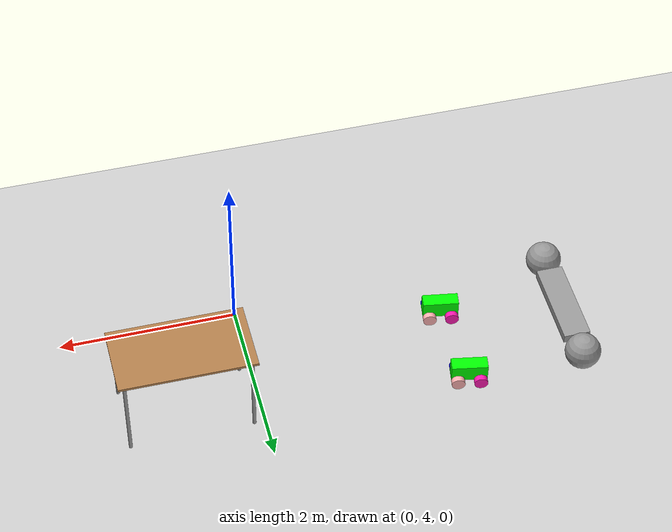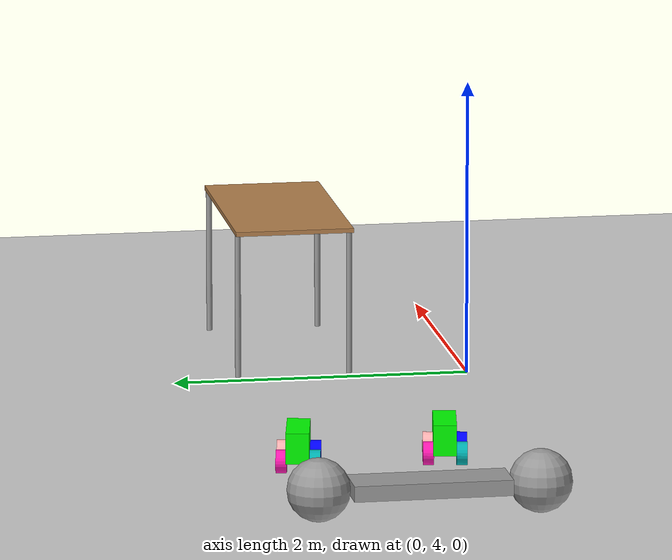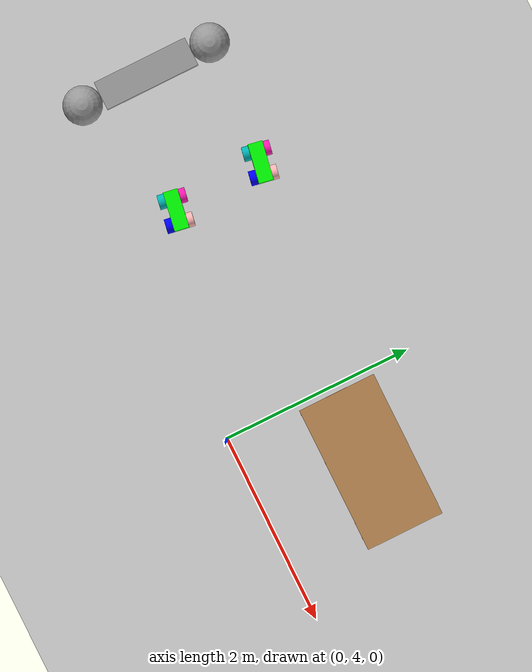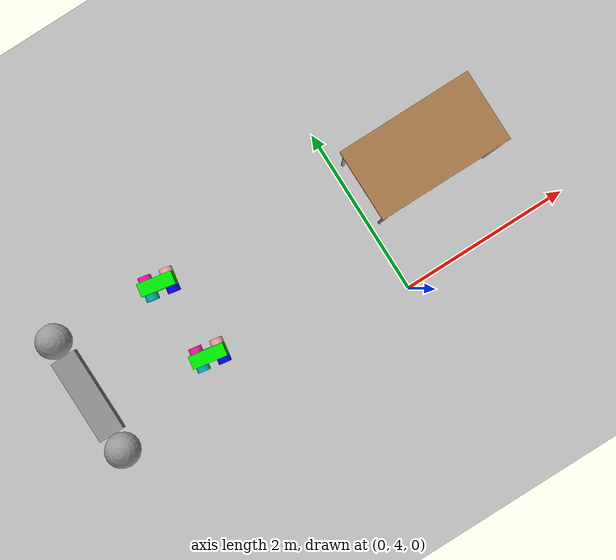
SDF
<sdf version="1.6">
 <world name="default">
  <model name="ground_plane">
   <static>1</static>
   <link name="link">
    <collision name="collision">
     <geometry><plane><normal>0 0 1</normal><size>100 100</size></plane></geometry>
     <surface>
      <contact><collide_bitmask>65535</collide_bitmask></contact>
      <friction><ode><mu>100</mu><mu2>50</mu2></ode></friction>
     </surface>
    </collision>
    <visual name="visual">
     <cast_shadows>0</cast_shadows>
     <geometry><plane><normal>0 0 1</normal><size>100 100</size></plane></geometry>
     <material>
      <script><uri>file://media/materials/scripts/gazebo.material</uri><name>Gazebo/Grey</name></script>
     </material>
    </visual>
   </link>
  </model>
  <model name="wheelrobot2">
   <link name="link_1">
    <pose>0.205245 -0.122906 0.4 0 -0 0</pose>
    <inertial>
     <mass>1</mass>
     <inertia>
      <ixx>0.166667</ixx>
      <ixy>0</ixy>
      <ixz>0</ixz>
      <iyy>0.166667</iyy>
      <iyz>0</iyz>
      <izz>0.166667</izz>
     </inertia>
    </inertial>
    <visual name="visual">
     <geometry><box><size>0.4 0.15 0.2</size></box></geometry>
     <material>
      <lighting>1</lighting>
      <script><uri>file://media/materials/scripts/gazebo.material</uri><name>Gazebo/Grey</name></script>
      <shader type="pixel"><normal_map>__default__</normal_map></shader>
      <ambient>0 1 0 1</ambient>
      <diffuse>0 1 0 1</diffuse>
      <specular>0 1 0.01 1</specular>
      <emissive>0 1 0 1</emissive>
     </material>
    </visual>
    <collision name="collision">
     <geometry><box><size>0.4 0.15 0.2</size></box></geometry>
     <surface>
      <friction>
       <ode><mu>1</mu><mu2>1</mu2><fdir1>0 0 0</fdir1><slip1>0</slip1><slip2>0</slip2></ode>
       <torsional>
        <coefficient>1</coefficient>
        <patch_radius>0</patch_radius>
        <surface_radius>0</surface_radius>
        <use_patch_radius>1</use_patch_radius>
        <ode><slip>0</slip></ode>
       </torsional>
      </friction>
      <bounce><restitution_coefficient>0</restitution_coefficient><threshold>1e+06</threshold></bounce>
      <contact>
       <collide_without_contact>0</collide_without_contact>
       <collide_without_contact_bitmask>1</collide_without_contact_bitmask>
       <collide_bitmask>1</collide_bitmask>
       <ode>
        <soft_cfm>0</soft_cfm>
        <soft_erp>0.2</soft_erp>
        <kp>1e+13</kp>
        <kd>1</kd>
        <max_vel>0.01</max_vel>
        <min_depth>0</min_depth>
       </ode>
       <bullet>
        <split_impulse>1</split_impulse>
        <split_impulse_penetration_threshold>-0.01</split_impulse_penetration_threshold>
        <soft_cfm>0</soft_cfm>
        <soft_erp>0.2</soft_erp>
        <kp>1e+13</kp>
        <kd>1</kd>
       </bullet>
      </contact>
     </surface>
    </collision>
   </link>
   <link name="link_2_clone">
    <pose>0.080245 -0.018274 0.3 1.5757 -0 0</pose>
    <inertial>
     <mass>1</mass>
     <inertia><ixx>0.145833</ixx><ixy>0</ixy><ixz>0</ixz><iyy>0.145833</iyy><iyz>0</iyz><izz>0.125</izz></inertia>
    </inertial>
    <visual name="visual">
     <geometry><cylinder><radius>0.075</radius><length>0.07</length></cylinder></geometry>
     <material>
      <lighting>1</lighting>
      <script><uri>file://media/materials/scripts/gazebo.material</uri><name>Gazebo/Grey</name></script>
      <shader type="pixel"><normal_map>__default__</normal_map></shader>
      <ambient>1 0.1 0.3 1</ambient>
      <diffuse>1 0.1 0.7 1</diffuse>
      <specular>0.1 1 0.01 1</specular>
      <emissive>0.1 1 0 1</emissive>
     </material>
    </visual>
    <collision name="collision">
     <geometry><cylinder><radius>0.075</radius><length>0.07</length></cylinder></geometry>
     <surface>
      <friction>
       <ode><mu>1</mu><mu2>1</mu2><fdir1>0 0 0</fdir1><slip1>0</slip1><slip2>0</slip2></ode>
       <torsional>
        <coefficient>1</coefficient>
        <patch_radius>0</patch_radius>
        <surface_radius>0</surface_radius>
        <use_patch_radius>1</use_patch_radius>
        <ode><slip>0</slip></ode>
       </torsional>
      </friction>
      <bounce><restitution_coefficient>0</restitution_coefficient><threshold>1e+06</threshold></bounce>
      <contact>
       <collide_without_contact>0</collide_without_contact>
       <collide_without_contact_bitmask>1</collide_without_contact_bitmask>
       <collide_bitmask>1</collide_bitmask>
       <ode>
        <soft_cfm>0</soft_cfm>
        <soft_erp>0.2</soft_erp>
        <kp>1e+13</kp>
        <kd>1</kd>
        <max_vel>0.01</max_vel>
        <min_depth>0</min_depth>
       </ode>
       <bullet>
        <split_impulse>1</split_impulse>
        <split_impulse_penetration_threshold>-0.01</split_impulse_penetration_threshold>
        <soft_cfm>0</soft_cfm>
        <soft_erp>0.2</soft_erp>
        <kp>1e+13</kp>
        <kd>1</kd>
       </bullet>
      </contact>
     </surface>
    </collision>
   </link>
   <link name="link_2_clone_0">
    <pose>0.330245 -0.018274 0.3 1.5757 -0 0</pose>
    <inertial>
     <mass>1</mass>
     <inertia><ixx>0.145833</ixx><ixy>0</ixy><ixz>0</ixz><iyy>0.145833</iyy><iyz>0</iyz><izz>0.125</izz></inertia>
    </inertial>
    <visual name="visual">
     <geometry><cylinder><radius>0.075</radius><length>0.07</length></cylinder></geometry>
     <material>
      <lighting>1</lighting>
      <script><uri>file://media/materials/scripts/gazebo.material</uri><name>Gazebo/Grey</name></script>
      <shader type="pixel"><normal_map>__default__</normal_map></shader>
      <ambient>1 0.3 1 1</ambient>
      <diffuse>1 0.7 0.7 1</diffuse>
      <specular>0.01 0.01 1 1</specular>
      <emissive>0.1 0 0.2 1</emissive>
     </material>
    </visual>
    <collision name="collision">
     <geometry><cylinder><radius>0.075</radius><length>0.07</length></cylinder></geometry>
     <surface>
      <friction>
       <ode><mu>1</mu><mu2>1</mu2><fdir1>0 0 0</fdir1><slip1>0</slip1><slip2>0</slip2></ode>
       <torsional>
        <coefficient>1</coefficient>
        <patch_radius>0</patch_radius>
        <surface_radius>0</surface_radius>
        <use_patch_radius>1</use_patch_radius>
        <ode><slip>0</slip></ode>
       </torsional>
      </friction>
      <bounce><restitution_coefficient>0</restitution_coefficient><threshold>1e+06</threshold></bounce>
      <contact>
       <collide_without_contact>0</collide_without_contact>
       <collide_without_contact_bitmask>1</collide_without_contact_bitmask>
       <collide_bitmask>1</collide_bitmask>
       <ode>
        <soft_cfm>0</soft_cfm>
        <soft_erp>0.2</soft_erp>
        <kp>1e+13</kp>
        <kd>1</kd>
        <max_vel>0.01</max_vel>
        <min_depth>0</min_depth>
       </ode>
       <bullet>
        <split_impulse>1</split_impulse>
        <split_impulse_penetration_threshold>-0.01</split_impulse_penetration_threshold>
        <soft_cfm>0</soft_cfm>
        <soft_erp>0.2</soft_erp>
        <kp>1e+13</kp>
        <kd>1</kd>
       </bullet>
      </contact>
     </surface>
    </collision>
   </link>
   <link name="link_2_clone_1">
    <pose>0.080245 -0.233274 0.3 1.5757 -0 0</pose>
    <inertial>
     <mass>1</mass>
     <inertia><ixx>0.145833</ixx><ixy>0</ixy><ixz>0</ixz><iyy>0.145833</iyy><iyz>0</iyz><izz>0.125</izz></inertia>
    </inertial>
    <visual name="visual">
     <geometry><cylinder><radius>0.075</radius><length>0.07</length></cylinder></geometry>
     <material>
      <lighting>1</lighting>
      <script><uri>file://media/materials/scripts/gazebo.material</uri><name>Gazebo/Grey</name></script>
      <shader type="pixel"><normal_map>__default__</normal_map></shader>
      <ambient>0 0.3 0.3 1</ambient>
      <diffuse>0 0.7 0.7 1</diffuse>
      <specular>0 0.01 0.01 1</specular>
      <emissive>0 0 0 1</emissive>
     </material>
    </visual>
    <collision name="collision">
     <geometry><cylinder><radius>0.075</radius><length>0.07</length></cylinder></geometry>
     <surface>
      <friction>
       <ode><mu>1</mu><mu2>1</mu2><fdir1>0 0 0</fdir1><slip1>0</slip1><slip2>0</slip2></ode>
       <torsional>
        <coefficient>1</coefficient>
        <patch_radius>0</patch_radius>
        <surface_radius>0</surface_radius>
        <use_patch_radius>1</use_patch_radius>
        <ode><slip>0</slip></ode>
       </torsional>
      </friction>
      <bounce><restitution_coefficient>0</restitution_coefficient><threshold>1e+06</threshold></bounce>
      <contact>
       <collide_without_contact>0</collide_without_contact>
       <collide_without_contact_bitmask>1</collide_without_contact_bitmask>
       <collide_bitmask>1</collide_bitmask>
       <ode>
        <soft_cfm>0</soft_cfm>
        <soft_erp>0.2</soft_erp>
        <kp>1e+13</kp>
        <kd>1</kd>
        <max_vel>0.01</max_vel>
        <min_depth>0</min_depth>
       </ode>
       <bullet>
        <split_impulse>1</split_impulse>
        <split_impulse_penetration_threshold>-0.01</split_impulse_penetration_threshold>
        <soft_cfm>0</soft_cfm>
        <soft_erp>0.2</soft_erp>
        <kp>1e+13</kp>
        <kd>1</kd>
       </bullet>
      </contact>
     </surface>
    </collision>
   </link>
   <link name="link_2_clone_2">
    <pose>0.330245 -0.233274 0.3 1.5757 -0 0</pose>
    <inertial>
     <mass>1</mass>
     <inertia><ixx>0.145833</ixx><ixy>0</ixy><ixz>0</ixz><iyy>0.145833</iyy><iyz>0</iyz><izz>0.125</izz></inertia>
    </inertial>
    <visual name="visual">
     <geometry><cylinder><radius>0.075</radius><length>0.07</length></cylinder></geometry>
     <material>
      <lighting>1</lighting>
      <script><uri>file://media/materials/scripts/gazebo.material</uri><name>Gazebo/Grey</name></script>
      <shader type="pixel"><normal_map>__default__</normal_map></shader>
      <ambient>0 0 1 1</ambient>
      <diffuse>0 0 1 1</diffuse>
      <specular>0 0 1 1</specular>
      <emissive>0 0 1 1</emissive>
     </material>
    </visual>
    <collision name="collision">
     <geometry><cylinder><radius>0.075</radius><length>0.07</length></cylinder></geometry>
     <surface>
      <friction>
       <ode><mu>1</mu><mu2>1</mu2><fdir1>0 0 0</fdir1><slip1>0</slip1><slip2>0</slip2></ode>
       <torsional>
        <coefficient>1</coefficient>
        <patch_radius>0</patch_radius>
        <surface_radius>0</surface_radius>
        <use_patch_radius>1</use_patch_radius>
        <ode><slip>0</slip></ode>
       </torsional>
      </friction>
      <bounce><restitution_coefficient>0</restitution_coefficient><threshold>1e+06</threshold></bounce>
      <contact>
       <collide_without_contact>0</collide_without_contact>
       <collide_without_contact_bitmask>1</collide_without_contact_bitmask>
       <collide_bitmask>1</collide_bitmask>
       <ode>
        <soft_cfm>0</soft_cfm>
        <soft_erp>0.2</soft_erp>
        <kp>1e+13</kp>
        <kd>1</kd>
        <max_vel>0.01</max_vel>
        <min_depth>0</min_depth>
       </ode>
       <bullet>
        <split_impulse>1</split_impulse>
        <split_impulse_penetration_threshold>-0.01</split_impulse_penetration_threshold>
        <soft_cfm>0</soft_cfm>
        <soft_erp>0.2</soft_erp>
        <kp>1e+13</kp>
        <kd>1</kd>
       </bullet>
      </contact>
     </surface>
    </collision>
   </link>
   <joint name="link_1_JOINT_1" type="revolute">
    <parent>link_1</parent>
    <child>link_2_clone_1</child>
    <axis>
     <xyz>0 0 1</xyz>
     <use_parent_model_frame>0</use_parent_model_frame>
     <limit>
      <lower>-1.79769e+308</lower>
      <upper>1.79769e+308</upper>
      <effort>-1</effort>
      <velocity>-1</velocity>
     </limit>
     <dynamics>
      <spring_reference>0</spring_reference>
      <spring_stiffness>0</spring_stiffness>
      <damping>0</damping>
     </dynamics>
    </axis>
    <physics>
     <ode><limit><cfm>0</cfm><erp>0.2</erp></limit><suspension><cfm>0</cfm><erp>0.2</erp></suspension></ode>
    </physics>
   </joint>
   <joint name="link_1_JOINT_2" type="revolute">
    <parent>link_1</parent>
    <child>link_2_clone_2</child>
    <axis>
     <xyz>1 0 0</xyz>
     <use_parent_model_frame>0</use_parent_model_frame>
     <limit>
      <lower>-1.79769e+308</lower>
      <upper>1.79769e+308</upper>
      <effort>-1</effort>
      <velocity>-1</velocity>
     </limit>
     <dynamics>
      <spring_reference>0</spring_reference>
      <spring_stiffness>0</spring_stiffness>
      <damping>0</damping>
     </dynamics>
    </axis>
    <physics>
     <ode><limit><cfm>0</cfm><erp>0.2</erp></limit><suspension><cfm>0</cfm><erp>0.2</erp></suspension></ode>
    </physics>
   </joint>
   <joint name="link_1_JOINT_3" type="revolute">
    <parent>link_1</parent>
    <child>link_2_clone_0</child>
    <axis>
     <xyz>1 0 0</xyz>
     <use_parent_model_frame>0</use_parent_model_frame>
     <limit>
      <lower>-1.79769e+308</lower>
      <upper>1.79769e+308</upper>
      <effort>-1</effort>
      <velocity>-1</velocity>
     </limit>
     <dynamics>
      <spring_reference>0</spring_reference>
      <spring_stiffness>0</spring_stiffness>
      <damping>0</damping>
     </dynamics>
    </axis>
    <physics>
     <ode><limit><cfm>0</cfm><erp>0.2</erp></limit><suspension><cfm>0</cfm><erp>0.2</erp></suspension></ode>
    </physics>
   </joint>
   <joint name="link_1_JOINT_4" type="revolute">
    <parent>link_1</parent>
    <child>link_2_clone</child>
    <axis>
     <xyz>1 0 0</xyz>
     <use_parent_model_frame>0</use_parent_model_frame>
     <limit>
      <lower>-1.79769e+308</lower>
      <upper>1.79769e+308</upper>
      <effort>-1</effort>
      <velocity>-1</velocity>
     </limit>
     <dynamics>
      <spring_reference>0</spring_reference>
      <spring_stiffness>0</spring_stiffness>
      <damping>0</damping>
     </dynamics>
    </axis>
    <physics>
     <ode><limit><cfm>0</cfm><erp>0.2</erp></limit><suspension><cfm>0</cfm><erp>0.2</erp></suspension></ode>
    </physics>
   </joint>
   <static>0</static>
   <allow_auto_disable>0</allow_auto_disable>
   <pose>-2.48392 5.67542 -0.225004 -0.000661 2.6e-05 -0.178671</pose>
  </model>
  <model name="myrobot2">
   <link name="link_1">
    <pose>0.225614 -0.46612 0.5 0 -0 0</pose>
    <inertial>
     <mass>1</mass>
     <inertia>
      <ixx>0.166667</ixx>
      <ixy>0</ixy>
      <ixz>0</ixz>
      <iyy>0.166667</iyy>
      <iyz>0</iyz>
      <izz>0.166667</izz>
     </inertia>
     <pose>0 0 0.2 0 -0 0</pose>
    </inertial>
    <visual name="visual">
     <geometry><box><size>0.3 1 0.1</size></box></geometry>
     <material>
      <lighting>1</lighting>
      <script><uri>file://media/materials/scripts/gazebo.material</uri><name>Gazebo/Grey</name></script>
      <shader type="pixel"><normal_map>__default__</normal_map></shader>
      <ambient>0.3 0.3 0.3 1</ambient>
      <diffuse>0.7 0.7 0.7 1</diffuse>
      <specular>0.01 0.01 0.01 1</specular>
      <emissive>0 0 0 1</emissive>
     </material>
    </visual>
    <collision name="collision">
     <geometry><box><size>0.3 1 0.1</size></box></geometry>
     <surface>
      <friction>
       <ode><mu>1</mu><mu2>1</mu2><fdir1>0 0 0</fdir1><slip1>0</slip1><slip2>0</slip2></ode>
       <torsional>
        <coefficient>1</coefficient>
        <patch_radius>0</patch_radius>
        <surface_radius>0</surface_radius>
        <use_patch_radius>1</use_patch_radius>
        <ode><slip>0</slip></ode>
       </torsional>
      </friction>
      <bounce><restitution_coefficient>0</restitution_coefficient><threshold>1e+06</threshold></bounce>
      <contact>
       <collide_without_contact>0</collide_without_contact>
       <collide_without_contact_bitmask>1</collide_without_contact_bitmask>
       <collide_bitmask>1</collide_bitmask>
       <ode>
        <soft_cfm>0</soft_cfm>
        <soft_erp>0.2</soft_erp>
        <kp>1e+13</kp>
        <kd>1</kd>
        <max_vel>0.01</max_vel>
        <min_depth>0</min_depth>
       </ode>
       <bullet>
        <split_impulse>1</split_impulse>
        <split_impulse_penetration_threshold>-0.01</split_impulse_penetration_threshold>
        <soft_cfm>0</soft_cfm>
        <soft_erp>0.2</soft_erp>
        <kp>1e+13</kp>
        <kd>1</kd>
       </bullet>
      </contact>
     </surface>
    </collision>
   </link>
   <link name="link_2">
    <pose>0.225614 -1.16612 0.5 0 -0 0</pose>
    <inertial>
     <mass>1</mass>
     <inertia><ixx>0.1</ixx><ixy>0</ixy><ixz>0</ixz><iyy>0.1</iyy><iyz>0</iyz><izz>0.1</izz></inertia>
     <pose>0 0 0.1 0 -0 0</pose>
    </inertial>
    <visual name="visual">
     <geometry><sphere><radius>0.2</radius></sphere></geometry>
     <material>
      <lighting>1</lighting>
      <script><uri>file://media/materials/scripts/gazebo.material</uri><name>Gazebo/Grey</name></script>
      <shader type="pixel"><normal_map>__default__</normal_map></shader>
      <ambient>0.3 0.3 0.3 1</ambient>
      <diffuse>0.7 0.7 0.7 1</diffuse>
      <specular>0.01 0.01 0.01 1</specular>
      <emissive>0 0 0 1</emissive>
     </material>
    </visual>
    <collision name="collision">
     <geometry><sphere><radius>0.2</radius></sphere></geometry>
     <surface>
      <friction>
       <ode><mu>1</mu><mu2>1</mu2><fdir1>0 0 0</fdir1><slip1>0</slip1><slip2>0</slip2></ode>
       <torsional>
        <coefficient>1</coefficient>
        <patch_radius>0</patch_radius>
        <surface_radius>0</surface_radius>
        <use_patch_radius>1</use_patch_radius>
        <ode><slip>0</slip></ode>
       </torsional>
      </friction>
      <bounce><restitution_coefficient>0</restitution_coefficient><threshold>1e+06</threshold></bounce>
      <contact>
       <collide_without_contact>0</collide_without_contact>
       <collide_without_contact_bitmask>1</collide_without_contact_bitmask>
       <collide_bitmask>1</collide_bitmask>
       <ode>
        <soft_cfm>0</soft_cfm>
        <soft_erp>0.2</soft_erp>
        <kp>1e+13</kp>
        <kd>1</kd>
        <max_vel>0.01</max_vel>
        <min_depth>0</min_depth>
       </ode>
       <bullet>
        <split_impulse>1</split_impulse>
        <split_impulse_penetration_threshold>-0.01</split_impulse_penetration_threshold>
        <soft_cfm>0</soft_cfm>
        <soft_erp>0.2</soft_erp>
        <kp>1e+13</kp>
        <kd>1</kd>
       </bullet>
      </contact>
     </surface>
    </collision>
   </link>
   <link name="link_2_clone">
    <pose>0.225614 0.23388 0.5 0 -0 0</pose>
    <inertial>
     <mass>1</mass>
     <inertia><ixx>0.1</ixx><ixy>0</ixy><ixz>0</ixz><iyy>0.1</iyy><iyz>0</iyz><izz>0.1</izz></inertia>
     <pose>0 0 0.1 0 -0 0</pose>
    </inertial>
    <visual name="visual">
     <geometry><sphere><radius>0.2</radius></sphere></geometry>
     <material>
      <lighting>1</lighting>
      <script><uri>file://media/materials/scripts/gazebo.material</uri><name>Gazebo/Grey</name></script>
      <shader type="pixel"><normal_map>__default__</normal_map></shader>
      <ambient>0.3 0.3 0.3 1</ambient>
      <diffuse>0.7 0.7 0.7 1</diffuse>
      <specular>0.01 0.01 0.01 1</specular>
      <emissive>0 0 0 1</emissive>
     </material>
    </visual>
    <collision name="collision">
     <geometry><sphere><radius>0.2</radius></sphere></geometry>
     <surface>
      <friction>
       <ode><mu>1</mu><mu2>1</mu2><fdir1>0 0 0</fdir1><slip1>0</slip1><slip2>0</slip2></ode>
       <torsional>
        <coefficient>1</coefficient>
        <patch_radius>0</patch_radius>
        <surface_radius>0</surface_radius>
        <use_patch_radius>1</use_patch_radius>
        <ode><slip>0</slip></ode>
       </torsional>
      </friction>
      <bounce><restitution_coefficient>0</restitution_coefficient><threshold>1e+06</threshold></bounce>
      <contact>
       <collide_without_contact>0</collide_without_contact>
       <collide_without_contact_bitmask>1</collide_without_contact_bitmask>
       <collide_bitmask>1</collide_bitmask>
       <ode>
        <soft_cfm>0</soft_cfm>
        <soft_erp>0.2</soft_erp>
        <kp>1e+13</kp>
        <kd>1</kd>
        <max_vel>0.01</max_vel>
        <min_depth>0</min_depth>
       </ode>
       <bullet>
        <split_impulse>1</split_impulse>
        <split_impulse_penetration_threshold>-0.01</split_impulse_penetration_threshold>
        <soft_cfm>0</soft_cfm>
        <soft_erp>0.2</soft_erp>
        <kp>1e+13</kp>
        <kd>1</kd>
       </bullet>
      </contact>
     </surface>
    </collision>
   </link>
   <joint name="link_1_JOINT_0" type="revolute">
    <parent>link_1</parent>
    <child>link_2</child>
    <axis>
     <xyz>0 1 0</xyz>
     <use_parent_model_frame>0</use_parent_model_frame>
     <limit>
      <lower>-1.79769e+308</lower>
      <upper>1.79769e+308</upper>
      <effort>-1</effort>
      <velocity>-1</velocity>
     </limit>
     <dynamics>
      <spring_reference>0</spring_reference>
      <spring_stiffness>0</spring_stiffness>
      <damping>0</damping>
      <friction>0</friction>
     </dynamics>
    </axis>
    <physics>
     <ode><limit><cfm>0</cfm><erp>0.2</erp></limit><suspension><cfm>0</cfm><erp>0.2</erp></suspension></ode>
    </physics>
   </joint>
   <joint name="link_1_JOINT_1" type="revolute">
    <parent>link_1</parent>
    <child>link_2_clone</child>
    <axis>
     <xyz>0 1 0</xyz>
     <use_parent_model_frame>0</use_parent_model_frame>
     <limit>
      <lower>-1.79769e+308</lower>
      <upper>1.79769e+308</upper>
      <effort>-1</effort>
      <velocity>-1</velocity>
     </limit>
     <dynamics>
      <spring_reference>0</spring_reference>
      <spring_stiffness>0</spring_stiffness>
      <damping>0</damping>
      <friction>0</friction>
     </dynamics>
    </axis>
    <physics>
     <ode><limit><cfm>0</cfm><erp>0.2</erp></limit><suspension><cfm>0</cfm><erp>0.2</erp></suspension></ode>
    </physics>
   </joint>
   <static>0</static>
   <pose>-3.81429 5.35839 -0.3 0 -0 0</pose>
  </model>
  <model name="wheelrobot2_0">
   <link name="link_1">
    <pose>0.205245 -0.122906 0.4 0 -0 0</pose>
    <inertial>
     <mass>1</mass>
     <inertia>
      <ixx>0.166667</ixx>
      <ixy>0</ixy>
      <ixz>0</ixz>
      <iyy>0.166667</iyy>
      <iyz>0</iyz>
      <izz>0.166667</izz>
     </inertia>
    </inertial>
    <visual name="visual">
     <geometry><box><size>0.4 0.15 0.2</size></box></geometry>
     <material>
      <lighting>1</lighting>
      <script><uri>file://media/materials/scripts/gazebo.material</uri><name>Gazebo/Grey</name></script>
      <shader type="pixel"><normal_map>__default__</normal_map></shader>
      <ambient>0 1 0 1</ambient>
      <diffuse>0 1 0 1</diffuse>
      <specular>0 1 0.01 1</specular>
      <emissive>0 1 0 1</emissive>
     </material>
    </visual>
    <collision name="collision">
     <geometry><box><size>0.4 0.15 0.2</size></box></geometry>
     <surface>
      <friction>
       <ode><mu>1</mu><mu2>1</mu2><fdir1>0 0 0</fdir1><slip1>0</slip1><slip2>0</slip2></ode>
       <torsional>
        <coefficient>1</coefficient>
        <patch_radius>0</patch_radius>
        <surface_radius>0</surface_radius>
        <use_patch_radius>1</use_patch_radius>
        <ode><slip>0</slip></ode>
       </torsional>
      </friction>
      <bounce><restitution_coefficient>0</restitution_coefficient><threshold>1e+06</threshold></bounce>
      <contact>
       <collide_without_contact>0</collide_without_contact>
       <collide_without_contact_bitmask>1</collide_without_contact_bitmask>
       <collide_bitmask>1</collide_bitmask>
       <ode>
        <soft_cfm>0</soft_cfm>
        <soft_erp>0.2</soft_erp>
        <kp>1e+13</kp>
        <kd>1</kd>
        <max_vel>0.01</max_vel>
        <min_depth>0</min_depth>
       </ode>
       <bullet>
        <split_impulse>1</split_impulse>
        <split_impulse_penetration_threshold>-0.01</split_impulse_penetration_threshold>
        <soft_cfm>0</soft_cfm>
        <soft_erp>0.2</soft_erp>
        <kp>1e+13</kp>
        <kd>1</kd>
       </bullet>
      </contact>
     </surface>
    </collision>
   </link>
   <link name="link_2_clone">
    <pose>0.080245 -0.018274 0.3 1.5757 -0 0</pose>
    <inertial>
     <mass>1</mass>
     <inertia><ixx>0.145833</ixx><ixy>0</ixy><ixz>0</ixz><iyy>0.145833</iyy><iyz>0</iyz><izz>0.125</izz></inertia>
    </inertial>
    <visual name="visual">
     <geometry><cylinder><radius>0.075</radius><length>0.07</length></cylinder></geometry>
     <material>
      <lighting>1</lighting>
      <script><uri>file://media/materials/scripts/gazebo.material</uri><name>Gazebo/Grey</name></script>
      <shader type="pixel"><normal_map>__default__</normal_map></shader>
      <ambient>1 0.1 0.3 1</ambient>
      <diffuse>1 0.1 0.7 1</diffuse>
      <specular>0.1 1 0.01 1</specular>
      <emissive>0.1 1 0 1</emissive>
     </material>
    </visual>
    <collision name="collision">
     <geometry><cylinder><radius>0.075</radius><length>0.07</length></cylinder></geometry>
     <surface>
      <friction>
       <ode><mu>1</mu><mu2>1</mu2><fdir1>0 0 0</fdir1><slip1>0</slip1><slip2>0</slip2></ode>
       <torsional>
        <coefficient>1</coefficient>
        <patch_radius>0</patch_radius>
        <surface_radius>0</surface_radius>
        <use_patch_radius>1</use_patch_radius>
        <ode><slip>0</slip></ode>
       </torsional>
      </friction>
      <bounce><restitution_coefficient>0</restitution_coefficient><threshold>1e+06</threshold></bounce>
      <contact>
       <collide_without_contact>0</collide_without_contact>
       <collide_without_contact_bitmask>1</collide_without_contact_bitmask>
       <collide_bitmask>1</collide_bitmask>
       <ode>
        <soft_cfm>0</soft_cfm>
        <soft_erp>0.2</soft_erp>
        <kp>1e+13</kp>
        <kd>1</kd>
        <max_vel>0.01</max_vel>
        <min_depth>0</min_depth>
       </ode>
       <bullet>
        <split_impulse>1</split_impulse>
        <split_impulse_penetration_threshold>-0.01</split_impulse_penetration_threshold>
        <soft_cfm>0</soft_cfm>
        <soft_erp>0.2</soft_erp>
        <kp>1e+13</kp>
        <kd>1</kd>
       </bullet>
      </contact>
     </surface>
    </collision>
   </link>
   <link name="link_2_clone_0">
    <pose>0.330245 -0.018274 0.3 1.5757 -0 0</pose>
    <inertial>
     <mass>1</mass>
     <inertia><ixx>0.145833</ixx><ixy>0</ixy><ixz>0</ixz><iyy>0.145833</iyy><iyz>0</iyz><izz>0.125</izz></inertia>
    </inertial>
    <visual name="visual">
     <geometry><cylinder><radius>0.075</radius><length>0.07</length></cylinder></geometry>
     <material>
      <lighting>1</lighting>
      <script><uri>file://media/materials/scripts/gazebo.material</uri><name>Gazebo/Grey</name></script>
      <shader type="pixel"><normal_map>__default__</normal_map></shader>
      <ambient>1 0.3 1 1</ambient>
      <diffuse>1 0.7 0.7 1</diffuse>
      <specular>0.01 0.01 1 1</specular>
      <emissive>0.1 0 0.2 1</emissive>
     </material>
    </visual>
    <collision name="collision">
     <geometry><cylinder><radius>0.075</radius><length>0.07</length></cylinder></geometry>
     <surface>
      <friction>
       <ode><mu>1</mu><mu2>1</mu2><fdir1>0 0 0</fdir1><slip1>0</slip1><slip2>0</slip2></ode>
       <torsional>
        <coefficient>1</coefficient>
        <patch_radius>0</patch_radius>
        <surface_radius>0</surface_radius>
        <use_patch_radius>1</use_patch_radius>
        <ode><slip>0</slip></ode>
       </torsional>
      </friction>
      <bounce><restitution_coefficient>0</restitution_coefficient><threshold>1e+06</threshold></bounce>
      <contact>
       <collide_without_contact>0</collide_without_contact>
       <collide_without_contact_bitmask>1</collide_without_contact_bitmask>
       <collide_bitmask>1</collide_bitmask>
       <ode>
        <soft_cfm>0</soft_cfm>
        <soft_erp>0.2</soft_erp>
        <kp>1e+13</kp>
        <kd>1</kd>
        <max_vel>0.01</max_vel>
        <min_depth>0</min_depth>
       </ode>
       <bullet>
        <split_impulse>1</split_impulse>
        <split_impulse_penetration_threshold>-0.01</split_impulse_penetration_threshold>
        <soft_cfm>0</soft_cfm>
        <soft_erp>0.2</soft_erp>
        <kp>1e+13</kp>
        <kd>1</kd>
       </bullet>
      </contact>
     </surface>
    </collision>
   </link>
   <link name="link_2_clone_1">
    <pose>0.080245 -0.233274 0.3 1.5757 -0 0</pose>
    <inertial>
     <mass>1</mass>
     <inertia><ixx>0.145833</ixx><ixy>0</ixy><ixz>0</ixz><iyy>0.145833</iyy><iyz>0</iyz><izz>0.125</izz></inertia>
    </inertial>
    <visual name="visual">
     <geometry><cylinder><radius>0.075</radius><length>0.07</length></cylinder></geometry>
     <material>
      <lighting>1</lighting>
      <script><uri>file://media/materials/scripts/gazebo.material</uri><name>Gazebo/Grey</name></script>
      <shader type="pixel"><normal_map>__default__</normal_map></shader>
      <ambient>0 0.3 0.3 1</ambient>
      <diffuse>0 0.7 0.7 1</diffuse>
      <specular>0 0.01 0.01 1</specular>
      <emissive>0 0 0 1</emissive>
     </material>
    </visual>
    <collision name="collision">
     <geometry><cylinder><radius>0.075</radius><length>0.07</length></cylinder></geometry>
     <surface>
      <friction>
       <ode><mu>1</mu><mu2>1</mu2><fdir1>0 0 0</fdir1><slip1>0</slip1><slip2>0</slip2></ode>
       <torsional>
        <coefficient>1</coefficient>
        <patch_radius>0</patch_radius>
        <surface_radius>0</surface_radius>
        <use_patch_radius>1</use_patch_radius>
        <ode><slip>0</slip></ode>
       </torsional>
      </friction>
      <bounce><restitution_coefficient>0</restitution_coefficient><threshold>1e+06</threshold></bounce>
      <contact>
       <collide_without_contact>0</collide_without_contact>
       <collide_without_contact_bitmask>1</collide_without_contact_bitmask>
       <collide_bitmask>1</collide_bitmask>
       <ode>
        <soft_cfm>0</soft_cfm>
        <soft_erp>0.2</soft_erp>
        <kp>1e+13</kp>
        <kd>1</kd>
        <max_vel>0.01</max_vel>
        <min_depth>0</min_depth>
       </ode>
       <bullet>
        <split_impulse>1</split_impulse>
        <split_impulse_penetration_threshold>-0.01</split_impulse_penetration_threshold>
        <soft_cfm>0</soft_cfm>
        <soft_erp>0.2</soft_erp>
        <kp>1e+13</kp>
        <kd>1</kd>
       </bullet>
      </contact>
     </surface>
    </collision>
   </link>
   <link name="link_2_clone_2">
    <pose>0.330245 -0.233274 0.3 1.5757 -0 0</pose>
    <inertial>
     <mass>1</mass>
     <inertia><ixx>0.145833</ixx><ixy>0</ixy><ixz>0</ixz><iyy>0.145833</iyy><iyz>0</iyz><izz>0.125</izz></inertia>
    </inertial>
    <visual name="visual">
     <geometry><cylinder><radius>0.075</radius><length>0.07</length></cylinder></geometry>
     <material>
      <lighting>1</lighting>
      <script><uri>file://media/materials/scripts/gazebo.material</uri><name>Gazebo/Grey</name></script>
      <shader type="pixel"><normal_map>__default__</normal_map></shader>
      <ambient>0 0 1 1</ambient>
      <diffuse>0 0 1 1</diffuse>
      <specular>0 0 1 1</specular>
      <emissive>0 0 1 1</emissive>
     </material>
    </visual>
    <collision name="collision">
     <geometry><cylinder><radius>0.075</radius><length>0.07</length></cylinder></geometry>
     <surface>
      <friction>
       <ode><mu>1</mu><mu2>1</mu2><fdir1>0 0 0</fdir1><slip1>0</slip1><slip2>0</slip2></ode>
       <torsional>
        <coefficient>1</coefficient>
        <patch_radius>0</patch_radius>
        <surface_radius>0</surface_radius>
        <use_patch_radius>1</use_patch_radius>
        <ode><slip>0</slip></ode>
       </torsional>
      </friction>
      <bounce><restitution_coefficient>0</restitution_coefficient><threshold>1e+06</threshold></bounce>
      <contact>
       <collide_without_contact>0</collide_without_contact>
       <collide_without_contact_bitmask>1</collide_without_contact_bitmask>
       <collide_bitmask>1</collide_bitmask>
       <ode>
        <soft_cfm>0</soft_cfm>
        <soft_erp>0.2</soft_erp>
        <kp>1e+13</kp>
        <kd>1</kd>
        <max_vel>0.01</max_vel>
        <min_depth>0</min_depth>
       </ode>
       <bullet>
        <split_impulse>1</split_impulse>
        <split_impulse_penetration_threshold>-0.01</split_impulse_penetration_threshold>
        <soft_cfm>0</soft_cfm>
        <soft_erp>0.2</soft_erp>
        <kp>1e+13</kp>
        <kd>1</kd>
       </bullet>
      </contact>
     </surface>
    </collision>
   </link>
   <joint name="link_1_JOINT_1" type="revolute">
    <parent>link_1</parent>
    <child>link_2_clone_1</child>
    <axis>
     <xyz>0 0 1</xyz>
     <use_parent_model_frame>0</use_parent_model_frame>
     <limit>
      <lower>-1.79769e+308</lower>
      <upper>1.79769e+308</upper>
      <effort>-1</effort>
      <velocity>-1</velocity>
     </limit>
     <dynamics>
      <spring_reference>0</spring_reference>
      <spring_stiffness>0</spring_stiffness>
      <damping>0</damping>
     </dynamics>
    </axis>
    <physics>
     <ode><limit><cfm>0</cfm><erp>0.2</erp></limit><suspension><cfm>0</cfm><erp>0.2</erp></suspension></ode>
    </physics>
   </joint>
   <joint name="link_1_JOINT_2" type="revolute">
    <parent>link_1</parent>
    <child>link_2_clone_2</child>
    <axis>
     <xyz>1 0 0</xyz>
     <use_parent_model_frame>0</use_parent_model_frame>
     <limit>
      <lower>-1.79769e+308</lower>
      <upper>1.79769e+308</upper>
      <effort>-1</effort>
      <velocity>-1</velocity>
     </limit>
     <dynamics>
      <spring_reference>0</spring_reference>
      <spring_stiffness>0</spring_stiffness>
      <damping>0</damping>
     </dynamics>
    </axis>
    <physics>
     <ode><limit><cfm>0</cfm><erp>0.2</erp></limit><suspension><cfm>0</cfm><erp>0.2</erp></suspension></ode>
    </physics>
   </joint>
   <joint name="link_1_JOINT_3" type="revolute">
    <parent>link_1</parent>
    <child>link_2_clone_0</child>
    <axis>
     <xyz>1 0 0</xyz>
     <use_parent_model_frame>0</use_parent_model_frame>
     <limit>
      <lower>-1.79769e+308</lower>
      <upper>1.79769e+308</upper>
      <effort>-1</effort>
      <velocity>-1</velocity>
     </limit>
     <dynamics>
      <spring_reference>0</spring_reference>
      <spring_stiffness>0</spring_stiffness>
      <damping>0</damping>
     </dynamics>
    </axis>
    <physics>
     <ode><limit><cfm>0</cfm><erp>0.2</erp></limit><suspension><cfm>0</cfm><erp>0.2</erp></suspension></ode>
    </physics>
   </joint>
   <joint name="link_1_JOINT_4" type="revolute">
    <parent>link_1</parent>
    <child>link_2_clone</child>
    <axis>
     <xyz>1 0 0</xyz>
     <use_parent_model_frame>0</use_parent_model_frame>
     <limit>
      <lower>-1.79769e+308</lower>
      <upper>1.79769e+308</upper>
      <effort>-1</effort>
      <velocity>-1</velocity>
     </limit>
     <dynamics>
      <spring_reference>0</spring_reference>
      <spring_stiffness>0</spring_stiffness>
      <damping>0</damping>
     </dynamics>
    </axis>
    <physics>
     <ode><limit><cfm>0</cfm><erp>0.2</erp></limit><suspension><cfm>0</cfm><erp>0.2</erp></suspension></ode>
    </physics>
   </joint>
   <static>0</static>
   <allow_auto_disable>0</allow_auto_disable>
   <pose>-2.43335 4.71394 -0.224776 -1e-06 0.000676 -0.162184</pose>
  </model>
  <model name="table_0">
   <static>1</static>
   <link name="link">
    <collision name="surface">
     <pose>0 0 1 0 -0 0</pose>
     <geometry><box><size>1.5 0.8 0.03</size></box></geometry>
     <surface><friction><ode><mu>0.6</mu><mu2>0.6</mu2></ode></friction></surface>
    </collision>
    <visual name="visual1">
     <pose>0 0 1 0 -0 0</pose>
     <geometry><box><size>1.5 0.8 0.03</size></box></geometry>
     <material>
      <script><uri>file://media/materials/scripts/gazebo.material</uri><name>Gazebo/Wood</name></script>
     </material>
    </visual>
    <collision name="front_left_leg">
     <pose>0.68 0.38 0.5 0 -0 0</pose>
     <geometry><cylinder><radius>0.02</radius><length>1</length></cylinder></geometry>
    </collision>
    <visual name="front_left_leg">
     <pose>0.68 0.38 0.5 0 -0 0</pose>
     <geometry><cylinder><radius>0.02</radius><length>1</length></cylinder></geometry>
     <material>
      <script><uri>file://media/materials/scripts/gazebo.material</uri><name>Gazebo/Grey</name></script>
     </material>
    </visual>
    <collision name="front_right_leg">
     <pose>0.68 -0.38 0.5 0 -0 0</pose>
     <geometry><cylinder><radius>0.02</radius><length>1</length></cylinder></geometry>
    </collision>
    <visual name="front_right_leg">
     <pose>0.68 -0.38 0.5 0 -0 0</pose>
     <geometry><cylinder><radius>0.02</radius><length>1</length></cylinder></geometry>
     <material>
      <script><uri>file://media/materials/scripts/gazebo.material</uri><name>Gazebo/Grey</name></script>
     </material>
    </visual>
    <collision name="back_right_leg">
     <pose>-0.68 -0.38 0.5 0 -0 0</pose>
     <geometry><cylinder><radius>0.02</radius><length>1</length></cylinder></geometry>
    </collision>
    <visual name="back_right_leg">
     <pose>-0.68 -0.38 0.5 0 -0 0</pose>
     <geometry><cylinder><radius>0.02</radius><length>1</length></cylinder></geometry>
     <material>
      <script><uri>file://media/materials/scripts/gazebo.material</uri><name>Gazebo/Grey</name></script>
     </material>
    </visual>
    <collision name="back_left_leg">
     <pose>-0.68 0.38 0.5 0 -0 0</pose>
     <geometry><cylinder><radius>0.02</radius><length>1</length></cylinder></geometry>
    </collision>
    <visual name="back_left_leg">
     <pose>-0.68 0.38 0.5 0 -0 0</pose>
     <geometry><cylinder><radius>0.02</radius><length>1</length></cylinder></geometry>
     <material>
      <script><uri>file://media/materials/scripts/gazebo.material</uri><name>Gazebo/Grey</name></script>
     </material>
    </visual>
   </link>
   <pose>0.798521 5.16714 0 0 -0 0</pose>
  </model>
 </world>
</sdf>
